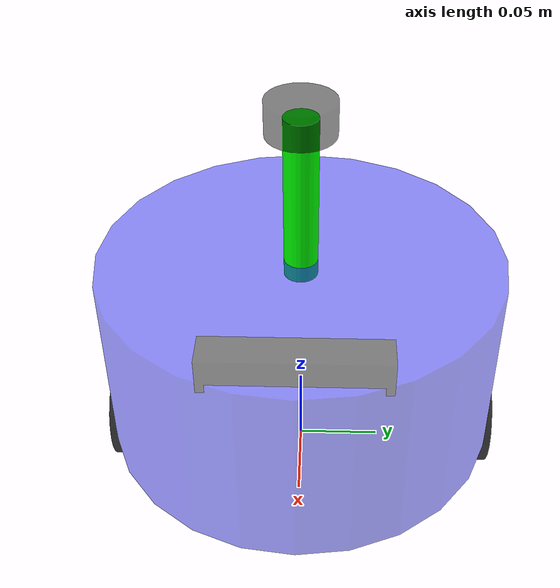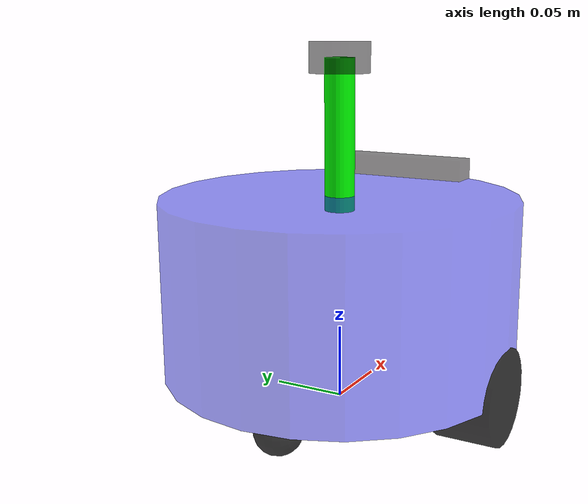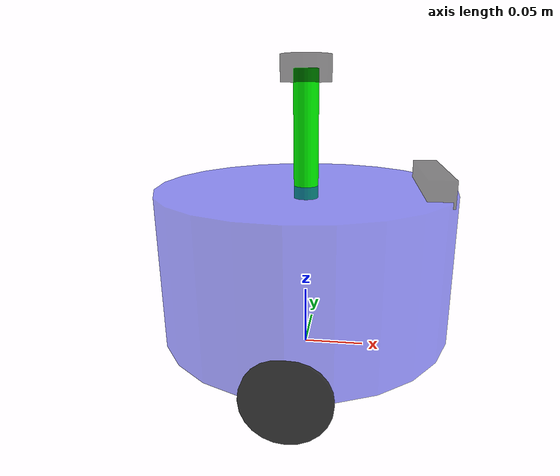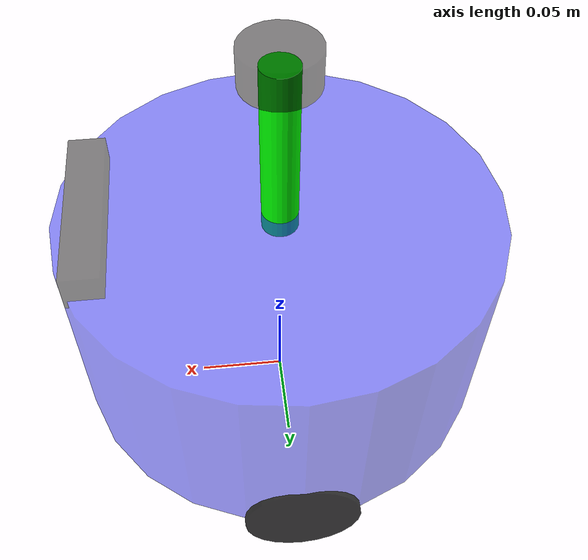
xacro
<?xml version="1.0"?>
<robot xmlns:xacro="http://www.ros.org/wiki/xacro" name="fishbot">
    <!-- 部件 -->
    <xacro:include filename="$(find fishbot_description)/urdf/fishbot/base.urdf.xacro"/>
    <xacro:include filename="$(find fishbot_description)/urdf/fishbot/sensor/imu.urdf.xacro"/>
    <xacro:include filename="$(find fishbot_description)/urdf/fishbot/sensor/laser.urdf.xacro"/>
    <xacro:include filename="$(find fishbot_description)/urdf/fishbot/sensor/camera.urdf.xacro"/>
    <xacro:include filename="$(find fishbot_description)/urdf/fishbot/actuator/wheel.urdf.xacro"/>
    <xacro:include filename="$(find fishbot_description)/urdf/fishbot/actuator/caster.urdf.xacro"/>
    <xacro:include filename="$(find fishbot_description)/urdf/fishbot/plugins/gazebo_control_plugin.xacro"/>
    <xacro:include filename="$(find fishbot_description)/urdf/fishbot/plugins/gazebo_sensor_plugin.xacro"/>
    <xacro:include filename="$(find fishbot_description)/urdf/fishbot/fishbot.ros2_control.xacro"/>
    <!-- 参数 -->
    <xacro:base_xacro length="0.12" radius="0.1" />
    <xacro:imu_xacro xyz="0.0 0.0 0.02" />
    <xacro:laser_xacro xyz="0.0 0.0 0.10"  />
    <xacro:camera_xacro xyz="0.10 0.0 0.065"  />
    <xacro:wheel_xacro wheel_name="left_wheel" xyz="0 0.10 -0.06 " />
    <xacro:wheel_xacro wheel_name="right_wheel" xyz="0 -0.10 -0.06 " />
    <xacro:caster_xacro caster_name="front_caster" xyz="0.08 0.0 -0.076 " />
    <xacro:caster_xacro caster_name="back_caster" xyz="-0.08 0.0 -0.076 " />
    <xacro:gazebo_sensor_plugin />
    <xacro:fishbot_ros2_control />
</robot>

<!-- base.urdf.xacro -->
<robot xmlns:xacro="http://www.ros.org/wiki/xacro">
    <xacro:include filename="$(find fishbot_description)/urdf/fishbot/common_inertia.xacro"/>
    <!-- 声明 base 模块 -->
    <xacro:macro name="base_xacro" params="length radius">
    <gazebo reference="base_link">
        <material>Gazebo/Red</material>
    </gazebo>

        <link name="base_footprint">

        </link>
        <link name="base_link">
            <visual>
                <origin xyz="0 0 0" rpy="0 0 0" />
                <geometry>
                    <cylinder length="${length}" radius="${length}" />
                </geometry>
                <material name="blue">
                    <color rgba="0.1 0.1 1.0 0.5" />
                </material>
            </visual>
            <collision>
                <origin xyz="0 0 0" rpy="0 0 0" />
                <geometry>
                    <cylinder length="${length}" radius="${length}" />
                </geometry>
                <material name="blue">
                    <color rgba="0.1 0.1 1.0 0.5" />
                </material>
            </collision>
            <xacro:cylinder_inertia m="1.0" r="${radius}" h="${length}" />
        </link>
        <joint name="joint_name" type="fixed">
            <origin xyz="0.0 0.0 ${length/2.0+0.032-0.01}" rpy="0.0 0.0 0.0"/>
            <parent link="base_footprint"/>
            <child link="base_link"/>

        </joint>
    </xacro:macro>
</robot>

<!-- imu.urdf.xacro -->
<robot xmlns:xacro="http://www.ros.org/wiki/xacro" name="first_robot">

    <xacro:include filename="$(find fishbot_description)/urdf/fishbot/common_inertia.xacro"/>
    <!-- 声明 IMU 模块 -->
    <xacro:macro name="imu_xacro" params="xyz ">
        <link name="imu_link">
            <visual>
                <origin xyz="0 0 0" rpy="0 0 0" />
                <geometry>
                    <box size="0.02 0.02 0.02" />
                </geometry>
                <material name="black">
                    <color rgba="0 0 0 0.5" />
                </material>
            </visual>
            <collision>
                <origin xyz="0 0 0" rpy="0 0 0" />
                <geometry>
                    <box size="0.02 0.02 0.02" />
                </geometry>
                <material name="black">
                    <color rgba="0 0 0 0.5" />
                </material>
            </collision>
            <xacro:box_inertia m="0.05" w="0.02" h="0.02" d="0.02" />
        </link>
        <joint name="imu_joint" type="fixed">
            <parent link="base_link" />
            <child link="imu_link" />
            <origin xyz="${xyz}" />
        </joint>
    </xacro:macro>

</robot>

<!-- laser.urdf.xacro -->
<robot xmlns:xacro="http://www.ros.org/wiki/xacro" name="first_robot">

    <xacro:include filename="$(find fishbot_description)/urdf/fishbot/common_inertia.xacro"/>
    <!-- 声明  模块 -->
    <xacro:macro name="laser_xacro" params="xyz ">

    <gazebo reference="laser_cylinder_link">
        <material>Gazebo/Black</material>
    </gazebo>
    <gazebo reference="laser_link">
        <material>Gazebo/Black</material>
    </gazebo>

        <link name="laser_cylinder_link">
            <visual>
                <origin xyz="0.0 0.0 0.0" rpy="0.0 0.0 0.0"/>
                <geometry>
                    <cylinder radius="0.01" length="0.10"/>
                </geometry>
                <material name="green">
                    <color rgba="0.0 1.0 0.0 1.0"/>
                </material>
            </visual>
            <collision>
                <origin xyz="0.0 0.0 0.0" rpy="0.0 0.0 0.0"/>
                <geometry>
                    <cylinder radius="0.01" length="0.10"/>
                </geometry>
                <material name="green">
                    <color rgba="0.0 1.0 0.0 1.0"/>
                </material>
            </collision>
            <xacro:cylinder_inertia m="0.1" h="0.10" r="0.01"  />
        </link>
        <joint name="laser_cylinder_joint" type="fixed">
            <origin xyz="${xyz}" />
            <parent link="base_link"/>
            <child link="laser_cylinder_link"/>

        </joint>
        <link name="laser_link">
            <visual>
                <origin xyz="0 0 0" rpy="0 0 0" />
                <geometry>
                    <cylinder radius="0.02" length="0.02"/>
                </geometry>
                <material name="black">
                    <color rgba="0 0 0 0.5" />
                </material>
            </visual>
            <collision>
                <origin xyz="0 0 0" rpy="0 0 0" />
                <geometry>
                    <cylinder radius="0.02" length="0.02"/>
                </geometry>
                <material name="black">
                    <color rgba="0 0 0 0.5" />
                </material>
            </collision>
            <xacro:cylinder_inertia m="0.10" h="0.02" r="0.02"  />
        </link>
        <joint name="laser_joint" type="fixed">
            <parent link="laser_cylinder_link" />
            <child link="laser_link" />
            <origin xyz="0.0 0.0 0.05" />
        </joint>
    </xacro:macro>

</robot>

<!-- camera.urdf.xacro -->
<robot xmlns:xacro="http://www.ros.org/wiki/xacro" name="first_robot">
    <xacro:include filename="$(find fishbot_description)/urdf/fishbot/common_inertia.xacro"/>
    <!-- 声明  模块 -->
    <xacro:macro name="camera_xacro" params="xyz">
        <link name="camera_optical_link">
        </link>
        <joint name="camera_optical" type="fixed">
                <origin xyz="0.0 0.0 0.0" rpy="${-pi/2} 0.0 ${-pi/2}"/>
                <parent link="camera_link"/>
                <child link="camera_optical_link"/>
        </joint>

        <link name="camera_link">
            <visual>
                <origin xyz="0 0 0" rpy="0 0 0" />
                <geometry>
                    <box size="0.02 0.10 0.02" />
                </geometry>
                <material name="black">
                    <color rgba="0 0 0 0.5" />
                </material>
            </visual>
            <collision>
                <origin xyz="0 0 0" rpy="0 0 0" />
                <geometry>
                    <box size="0.02 0.10 0.02" />
                </geometry>
                <material name="black">
                    <color rgba="0 0 0 0.5" />
                </material>
            </collision>
            <xacro:box_inertia m="0.1" w="0.02" h="0.10" d="0.02" />
        </link>
        <joint name="camera_joint" type="fixed">
            <parent link="base_link" />
            <child link="camera_link" />
            <origin xyz="${xyz}" />
        </joint>
    </xacro:macro>

</robot>

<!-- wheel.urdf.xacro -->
<robot xmlns:xacro="http://www.ros.org/wiki/xacro" name="first_robot">

    <xacro:include filename="$(find fishbot_description)/urdf/fishbot/common_inertia.xacro"/>
    <!-- 声明  模块 -->
    <xacro:macro name="wheel_xacro" params="wheel_name xyz ">
        <link name="${wheel_name}_link">
            <visual>
                <origin xyz="0 0 0" rpy="1.57079 0.0 0.0" />
                <geometry>
                    <cylinder radius="0.032" length="0.04"/>
                </geometry>
                <material name="black">
                    <color rgba="0 0 0 0.8" />
                </material>
            </visual>
            <collision>
                <origin xyz="0 0 0" rpy="1.57079 0.0 0.0" />
                <geometry>
                    <cylinder radius="0.032" length="0.04"/>
                </geometry>
                <material name="black">
                    <color rgba="0 0 0 0.8" />
                </material>
            </collision>
            <xacro:cylinder_inertia m="0.05" r="0.032" h="0.04" />
        </link>
        <joint name="${wheel_name}_joint" type="continuous">
            <parent link="base_link" />
            <child link="${wheel_name}_link" />
            <origin xyz="${xyz}" />
            <axis xyz="0.0 1.0 0.0"/>
        </joint>

        <gazebo reference="${wheel_name}_link">
            <mu1 value="20.0" />
            <mu2 value="20.0" />
            <kp value="100000000.0" />
            <kd value="2.0" />
        </gazebo>

    </xacro:macro>

</robot>

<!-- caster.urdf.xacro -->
<robot xmlns:xacro="http://www.ros.org/wiki/xacro" name="first_robot">

    <xacro:include filename="$(find fishbot_description)/urdf/fishbot/common_inertia.xacro"/>
    <!-- 声明 IMU 模块 -->
    <xacro:macro name="caster_xacro" params="caster_name xyz ">
        <link name="${caster_name}_link">
            <visual>
                <origin xyz="0 0 0" rpy="1.57079 0.0 0.0" />
                <geometry>
                    <sphere radius="0.016"/>
                </geometry>
                <material name="black">
                    <color rgba="0 0 0 0.8" />
                </material>
            </visual>
            <collision>
                <origin xyz="0 0 0" rpy="1.57079 0.0 0.0" />
                <geometry>
                    <sphere radius="0.016"/>
                </geometry>
                <material name="black">
                    <color rgba="0 0 0 0.8" />
                </material>
            </collision>
            <xacro:sphere_inertia m="0.05" r="0.016" />
        </link>
        <joint name="${caster_name}_joint" type="fixed">
            <parent link="base_link" />
            <child link="${caster_name}_link" />
            <origin xyz="${xyz}" />
            <axis xyz="0.0 0.0 0.0"/>
        </joint>

        <gazebo reference="${caster_name}_link">
            <mu1 value="0.0" />
            <mu2 value="0.0" />
            <kp value="1000000000.0" />
            <kd value="1.0" />
        </gazebo>

    </xacro:macro>

</robot>
